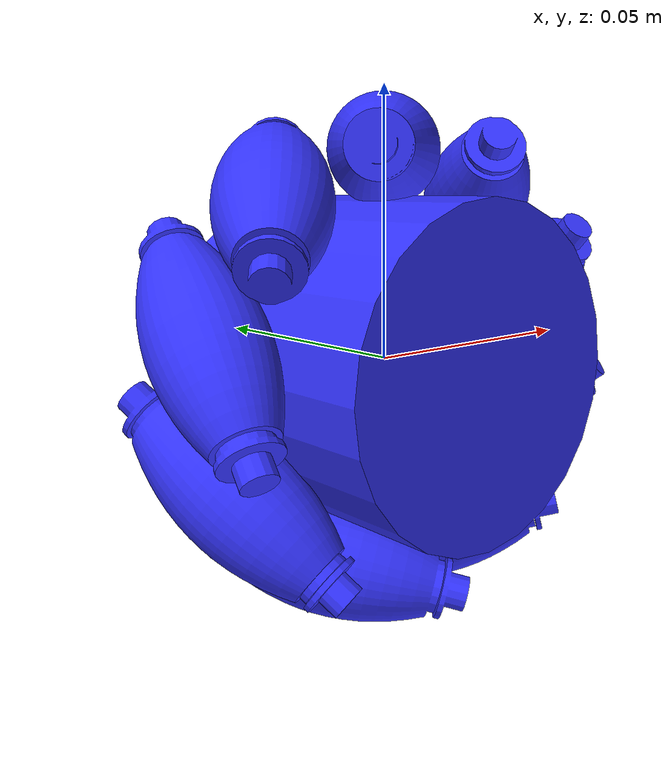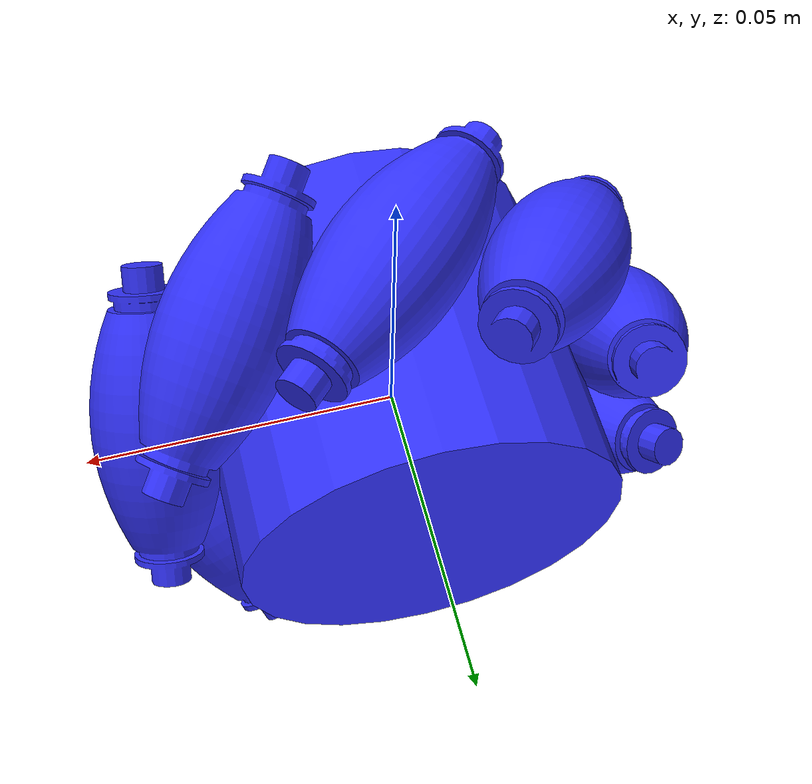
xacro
<?xml version="1.0"?>
<robot name="heale" xmlns:xacro="http://www.ros.org/wiki/xacro">

    <!-- Include wheel 1 *********************************************************************** -->
    <xacro:include filename="wheel_2.xacro"/>

    <!-- Include roller *********************************************************************** -->
    <xacro:include filename="roller.xacro"/>

    <!--front-right wheel**************************************************************************************************** -->
    <xacro:wheel_2 fr_or_bl="front_right" />

    <!--front-right roller 1**************************************************************************************************** -->
    <xacro:roller frnt_or_bk="front" lft_or_rght="right" number="1" x="0" z="0.03833567" r="0" p="-0.785398" y="0" />

    <!--front-right roller 2**************************************************************************************************** -->
    <xacro:roller frnt_or_bk="front" lft_or_rght="right" number="2"  x="0.02464169" z="0.02936683" r="-0.0872664" p="-0.785398" y="0.698132" />

    <!--front-right roller 3**************************************************************************************************** -->
    <xacro:roller frnt_or_bk="front" lft_or_rght="right" number="3"  x="0.03775327" z="0.00665692" r="-0.1745328" p="-0.785398" y="1.396263" />

    <!--front-right roller 4**************************************************************************************************** -->
    <xacro:roller frnt_or_bk="front" lft_or_rght="right" number="4"  x="0.03319966" z="-0.01916784" r="-0.26171799" p="-0.785398" y="2.094395" />

    <!--front-right roller 5**************************************************************************************************** -->
    <xacro:roller frnt_or_bk="front" lft_or_rght="right" number="5"  x="0.01311157" z="-0.03602375" r="-0.26171799" p="-0.785398" y="2.792527" />

    <!--front-right roller 6**************************************************************************************************** -->
    <xacro:roller frnt_or_bk="front" lft_or_rght="right" number="6"  x="-0.01311157" z="-0.03602375" r="-0.26171799" p="-0.785398" y="3.490659" />

    <!--front-right roller 7**************************************************************************************************** -->
    <xacro:roller frnt_or_bk="front" lft_or_rght="right" number="7"  x="-0.03319966" z="-0.01916784" r="-0.26171799" p="-0.785398" y="4.18879" />

    <!--front-right roller 8**************************************************************************************************** -->
    <xacro:roller frnt_or_bk="front" lft_or_rght="right" number="8"  x="-0.03775327" z="0.00665692" r="-0.1745328" p="-0.785398" y="4.886922" />

    <!--front-right roller 9**************************************************************************************************** -->
    <xacro:roller frnt_or_bk="front" lft_or_rght="right" number="9"  x="-0.02464169" z="0.02936683" r="-0.0872664" p="-0.785398" y="5.585054" />

</robot>

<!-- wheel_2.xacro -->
<robot name="heale" xmlns:xacro="http://www.ros.org/wiki/xacro">

<!-- Wheels macro ******************************************************************************************-->
    <xacro:macro name="wheel_2" params="fr_or_bl">
        <!-- Wheel link -->
        <link name="${fr_or_bl}_wheel">
            <inertial>
                <origin xyz="0.0 0.0 0.0" rpy="0.0 0.0 0.0" />
                <mass value="0.1" />
                <inertia ixx="0.01" ixy="0.0" ixz="0.0" iyy="0.01" iyz="0.0" izz="0.01" />
            </inertial>
            <visual name="">
                <origin xyz="0.0 0.0 0.0" rpy="1.57079632679 0.0 0.0" />
                <geometry>
                    <cylinder radius="0.030253505" length="0.05332" />
                </geometry>
                <material name="blue">
                    <color rgba="0.2 0.2 1 1"/>
                </material>
            </visual>
            <collision>
                <origin xyz="0.0 0.0 0.0" rpy="1.57079632679 0.0 0.0" />
                <geometry>
                    <cylinder radius="0.02253505" length="0.05332" />
                </geometry>
            </collision>
        </link>

        <!-- Foot print (Dummy Link)********************************************************************** -->
        <link name="foot_print">
        </link>

        <joint name="fp_to_main_body" type="fixed">
            <parent link="foot_print"/>
            <child link="${fr_or_bl}_wheel"/>
            <origin xyz="0.0 0.0 0.0" rpy="0.0 0.0 0.0"/>
        </joint>

    </xacro:macro>

</robot>

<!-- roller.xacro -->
<robot name="heale" xmlns:xacro="http://www.ros.org/wiki/xacro">

  <!-- Rubber Wheel Macro -->
  <xacro:macro name="roller" params="frnt_or_bk lft_or_rght number x z r p y">

    <!-- Rubber Wheel link -->
    <link name="{frnt_or_bk}_${lft_or_rght}_${number}_roller">
      <inertial>
        <origin xyz="-9.3675E-17 -1.0686E-15 1.3045E-15" rpy="0 0 0" />
        <mass value="0.0052688" />
        <inertia
          ixx="7.0476E-07" ixy="-5.6311E-09" ixz="5.6325E-09"
          iyy="4.4776E-07" iyz="2.5718E-07" izz="4.4764E-07" />
      </inertial>

      <visual>
        <origin xyz="0.0 0.0 0.0" rpy="0 0 0" />
        <geometry>
          <mesh filename="package://mecanum_description/meshes/roller.STL" />
        </geometry>
        <material name="blue">
          <color rgba="0.2 0.2 1 1"/>
        </material>
      </visual>

      <collision>
        <origin xyz="0.0 0.0 0.0" rpy="0 0 0" />
        <geometry>
          <mesh filename="package://mecanum_description/meshes/roller.STL" />
        </geometry>
      </collision>
    </link>

    <link name="{frnt_or_bk}_${lft_or_rght}_${number}_dummy_roller">
    </link>

    <joint name="${frnt_or_bk}_${lft_or_rght}_${number}_dummy_roller_joint" type="fixed">
      <origin rpy="0 ${y} 0" xyz="${x} 0 ${z}" />
      <parent link="${frnt_or_bk}_${lft_or_rght}_wheel"/>
      <child link="{frnt_or_bk}_${lft_or_rght}_${number}_dummy_roller"/>
    </joint>

    <!-- Joint -->
    <joint name="${frnt_or_bk}_${lft_or_rght}_${number}_roller_joint" type="continuous">
      <origin rpy="0 0 ${p}" xyz="0 0 0" />
      <parent link="{frnt_or_bk}_${lft_or_rght}_${number}_dummy_roller"/>
      <child link="{frnt_or_bk}_${lft_or_rght}_${number}_roller"/>
      <axis xyz="0 1 0" />
    </joint>

    <!-- Gazebo plugin params -->
    <gazebo reference="{frnt_or_bk}_${lft_or_rght}_${number}_roller">
      <mu1>1e14</mu1>
      <mu2>1e14</mu2>
      <kp>1e12</kp>
      <kd>10.0</kd>
      <minDepth>0.001</minDepth>
      <maxVel>0.1</maxVel>
      <fdir1>0 1 0</fdir1>
    </gazebo>

  </xacro:macro>

</robot>
